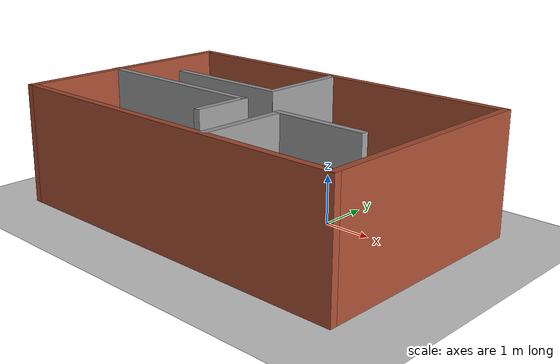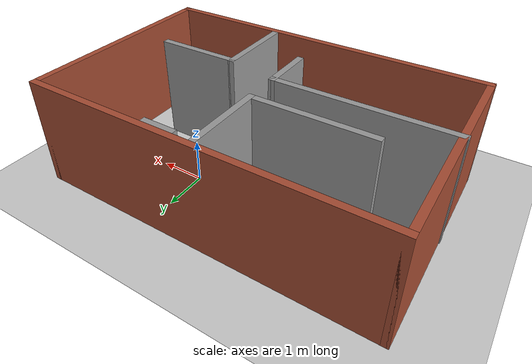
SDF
<sdf version="1.7">
 <world name="default">
  <light name="sun" type="directional">
   <pose>0 0 10 0 -0 0</pose>
   <diffuse>0.8 0.8 0.8 1</diffuse>
   <specular>0.2 0.2 0.2 1</specular>
   <attenuation>
    <range>1000</range>
    <constant>0.9</constant>
    <linear>0.01</linear>
    <quadratic>0.001</quadratic>
   </attenuation>
   <direction>-0.5 0.1 -0.9</direction>
   <spot><inner_angle>0</inner_angle><outer_angle>0</outer_angle><falloff>0</falloff></spot>
  </light>
  <model name="ground_plane">
   <static>1</static>
   <link name="link">
    <collision name="collision">
     <geometry><plane><normal>0 0 1</normal><size>100 100</size></plane></geometry>
     <surface><friction><ode><mu>100</mu><mu2>50</mu2></ode></friction></surface>
    </collision>
    <visual name="visual">
     <cast_shadows>0</cast_shadows>
     <geometry><plane><normal>0 0 1</normal><size>100 100</size></plane></geometry>
     <material>
      <script><uri>file://media/materials/scripts/gazebo.material</uri><name>Gazebo/Grey</name></script>
     </material>
    </visual>
   </link>
  </model>
  <gravity>0 0 -9.8</gravity>
  <magnetic_field>6e-06 2.3e-05 -4.2e-05</magnetic_field>
  <atmosphere type="adiabatic"/>
  <physics type="ode">
   <max_step_size>0.001</max_step_size>
   <real_time_factor>1</real_time_factor>
   <real_time_update_rate>1000</real_time_update_rate>
  </physics>
  <scene><ambient>0.4 0.4 0.4 1</ambient><background>0.7 0.7 0.7 1</background><shadows>1</shadows></scene>
  <audio><device>default</device></audio>
  <spherical_coordinates>
   <surface_model>EARTH_WGS84</surface_model>
   <latitude_deg>0</latitude_deg>
   <longitude_deg>0</longitude_deg>
   <elevation>0</elevation>
   <heading_deg>0</heading_deg>
  </spherical_coordinates>
  <model name="room">
   <pose>-1.21913 -0.010668 0 0 -0 0</pose>
   <link name="Wall_10">
    <collision name="Wall_10_Collision">
     <geometry><box><size>2 0.15 2.5</size></box></geometry>
     <pose>0 0 1.25 0 -0 0</pose>
    </collision>
    <visual name="Wall_10_Visual">
     <pose>0 0 1.25 0 -0 0</pose>
     <geometry><box><size>2 0.15 2.5</size></box></geometry>
     <material>
      <script><uri>file://media/materials/scripts/gazebo.material</uri><name>Gazebo/Grey</name></script>
      <ambient>1 1 1 1</ambient>
     </material>
     <meta><layer>0</layer></meta>
    </visual>
    <pose>-0.085 0.7475 0 0 -0 -1.5708</pose>
   </link>
   <link name="Wall_11">
    <collision name="Wall_11_Collision">
     <geometry><box><size>2.77 0.15 2.5</size></box></geometry>
     <pose>0 0 1.25 0 -0 0</pose>
    </collision>
    <visual name="Wall_11_Visual">
     <pose>0 0 1.25 0 -0 0</pose>
     <geometry><box><size>2.77 0.15 2.5</size></box></geometry>
     <material>
      <script><uri>file://media/materials/scripts/gazebo.material</uri><name>Gazebo/Grey</name></script>
      <ambient>1 1 1 1</ambient>
     </material>
     <meta><layer>0</layer></meta>
    </visual>
    <pose>-1.405 -0.1775 0 0 -0 3.14159</pose>
   </link>
   <link name="Wall_15">
    <collision name="Wall_15_Collision">
     <geometry><box><size>4 0.15 2.5</size></box></geometry>
     <pose>0 0 1.25 0 -0 0</pose>
    </collision>
    <visual name="Wall_15_Visual">
     <pose>0 0 1.25 0 -0 0</pose>
     <geometry><box><size>4 0.15 2.5</size></box></geometry>
     <material>
      <script><uri>file://media/materials/scripts/gazebo.material</uri><name>Gazebo/Grey</name></script>
      <ambient>1 1 1 1</ambient>
     </material>
     <meta><layer>0</layer></meta>
    </visual>
    <pose>-2.01 -1.0175 0 0 -0 0</pose>
   </link>
   <link name="Wall_18">
    <collision name="Wall_18_Collision">
     <geometry><box><size>1.25 0.15 2.5</size></box></geometry>
     <pose>0 0 1.25 0 -0 0</pose>
    </collision>
    <visual name="Wall_18_Visual">
     <pose>0 0 1.25 0 -0 0</pose>
     <geometry><box><size>1.25 0.15 2.5</size></box></geometry>
     <material>
      <script><uri>file://media/materials/scripts/gazebo.material</uri><name>Gazebo/Grey</name></script>
      <ambient>1 1 1 1</ambient>
     </material>
     <meta><layer>0</layer></meta>
    </visual>
    <pose>-0.085 -1.5675 0 0 -0 -1.5708</pose>
   </link>
   <link name="Wall_2">
    <collision name="Wall_2_Collision">
     <geometry><box><size>8 0.15 2.5</size></box></geometry>
     <pose>0 0 1.25 0 -0 0</pose>
    </collision>
    <visual name="Wall_2_Visual">
     <pose>0 0 1.25 0 -0 0</pose>
     <geometry><box><size>8 0.15 2.5</size></box></geometry>
     <material>
      <script><uri>file://media/materials/scripts/gazebo.material</uri><name>Gazebo/Bricks</name></script>
      <ambient>1 1 1 1</ambient>
     </material>
     <meta><layer>0</layer></meta>
    </visual>
    <pose>0.01 1.6825 0 0 -0 0</pose>
   </link>
   <link name="Wall_26">
    <collision name="Wall_26_Collision">
     <geometry><box><size>2 0.15 2.5</size></box></geometry>
     <pose>0 0 1.25 0 -0 0</pose>
    </collision>
    <visual name="Wall_26_Visual">
     <pose>0 0 1.25 0 -0 0</pose>
     <geometry><box><size>2 0.15 2.5</size></box></geometry>
     <material>
      <script><uri>file://media/materials/scripts/gazebo.material</uri><name>Gazebo/Grey</name></script>
      <ambient>1 1 1 1</ambient>
     </material>
     <meta><layer>0</layer></meta>
    </visual>
    <pose>1.115 -2.2025 0 0 -0 1.5708</pose>
   </link>
   <link name="Wall_27">
    <collision name="Wall_27_Collision">
     <geometry><box><size>2 0.15 2.5</size></box></geometry>
     <pose>0 0 1.25 0 -0 0</pose>
    </collision>
    <visual name="Wall_27_Visual">
     <pose>0 0 1.25 0 -0 0</pose>
     <geometry><box><size>2 0.15 2.5</size></box></geometry>
     <material>
      <script><uri>file://media/materials/scripts/gazebo.material</uri><name>Gazebo/Grey</name></script>
      <ambient>1 1 1 1</ambient>
     </material>
     <meta><layer>0</layer></meta>
    </visual>
    <pose>2.04 -1.2775 0 0 -0 0</pose>
   </link>
   <link name="Wall_3">
    <collision name="Wall_3_Collision">
     <geometry><box><size>5 0.15 2.5</size></box></geometry>
     <pose>0 0 1.25 0 -0 0</pose>
    </collision>
    <visual name="Wall_3_Visual">
     <pose>0 0 1.25 0 -0 0</pose>
     <geometry><box><size>5 0.15 2.5</size></box></geometry>
     <material>
      <script><uri>file://media/materials/scripts/gazebo.material</uri><name>Gazebo/Bricks</name></script>
      <ambient>1 1 1 1</ambient>
     </material>
     <meta><layer>0</layer></meta>
    </visual>
    <pose>3.935 -0.7425 0 0 -0 -1.5708</pose>
   </link>
   <link name="Wall_4">
    <collision name="Wall_4_Collision">
     <geometry><box><size>8 0.15 2.5</size></box></geometry>
     <pose>0 0 1.25 0 -0 0</pose>
    </collision>
    <visual name="Wall_4_Visual">
     <pose>0 0 1.25 0 -0 0</pose>
     <geometry><box><size>8 0.15 2.5</size></box></geometry>
     <material>
      <script><uri>file://media/materials/scripts/gazebo.material</uri><name>Gazebo/Bricks</name></script>
      <ambient>1 1 1 1</ambient>
     </material>
     <meta><layer>0</layer></meta>
    </visual>
    <pose>0.01 -3.1675 0 0 -0 3.14159</pose>
   </link>
   <link name="Wall_5">
    <collision name="Wall_5_Collision">
     <geometry><box><size>5 0.15 2.5</size></box></geometry>
     <pose>0 0 1.25 0 -0 0</pose>
    </collision>
    <visual name="Wall_5_Visual">
     <pose>0 0 1.25 0 -0 0</pose>
     <geometry><box><size>5 0.15 2.5</size></box></geometry>
     <material>
      <script><uri>file://media/materials/scripts/gazebo.material</uri><name>Gazebo/Bricks</name></script>
      <ambient>1 1 1 1</ambient>
     </material>
     <meta><layer>0</layer></meta>
    </visual>
    <pose>-3.915 -0.7425 0 0 -0 1.5708</pose>
   </link>
   <static>1</static>
  </model>
  <model name="unit_box">
   <pose>1.20302 0.346397 0.5 0 -0 0</pose>
   <link name="link">
    <inertial>
     <mass>1</mass>
     <inertia>
      <ixx>0.166667</ixx>
      <ixy>0</ixy>
      <ixz>0</ixz>
      <iyy>0.166667</iyy>
      <iyz>0</iyz>
      <izz>0.166667</izz>
     </inertia>
    </inertial>
    <collision name="collision"><geometry><box><size>1 1 1</size></box></geometry></collision>
    <visual name="visual">
     <geometry><box><size>1 1 1</size></box></geometry>
     <material>
      <script><name>Gazebo/Grey</name><uri>file://media/materials/scripts/gazebo.material</uri></script>
     </material>
    </visual>
   </link>
  </model>
 </world>
</sdf>
